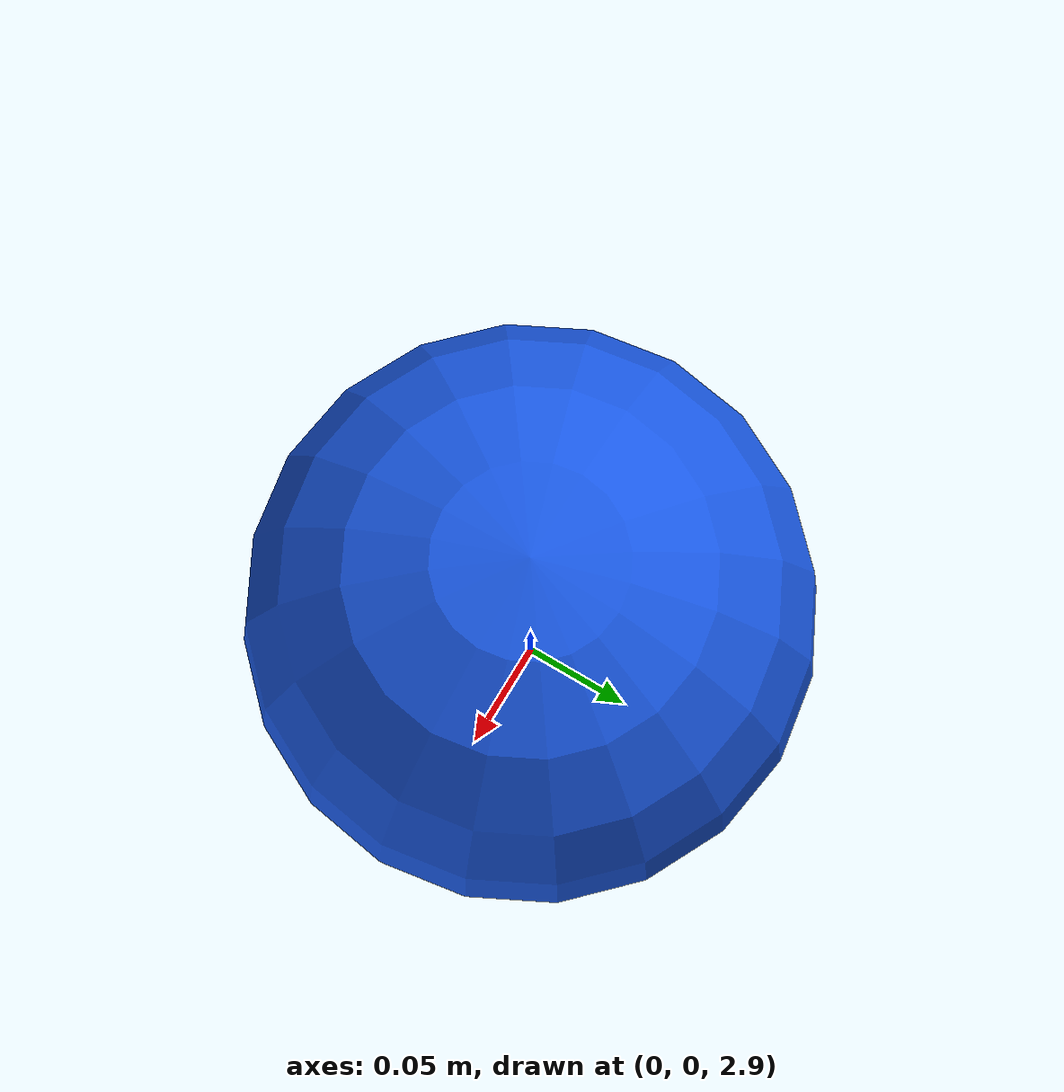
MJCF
<mujoco model="free_fall">
  <option timestep="0.04" gravity="0 0 -9.81"/>
  <visual><global offwidth="320" offheight="240"/></visual>
  <worldbody>
    <light pos="0 -3 4"/>
    <camera name="track" pos="4 -7 4" xyaxes="1 0 0 0 0.55 0.83"/>
    <geom name="floor" type="plane" size="5 5 0.1" rgba="0.8 0.8 0.8 1" condim="3"/>
    <body name="ball" pos="0 0 3">
      <freejoint name="ball_free"/>
      <geom name="ball_geom" type="sphere" size="0.12" mass="1" rgba="0.1 0.35 0.9 1"/>
    </body>
  </worldbody>
</mujoco>
